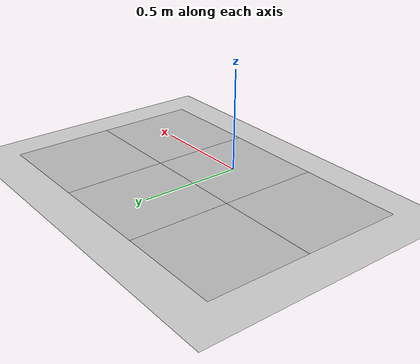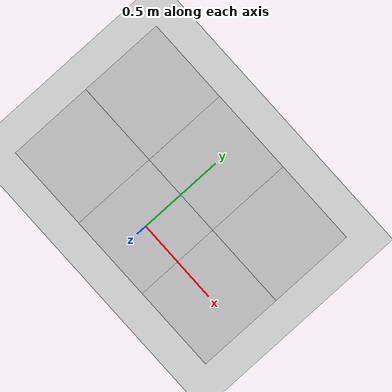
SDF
<?xml version="1.0" ?>
<sdf version="1.6">
  <world name="default">
    <physics name="10ms" type="ignored">
      <max_step_size>0.010</max_step_size>
      <real_time_factor>1.0</real_time_factor>
    </physics>
    <plugin
      filename="gz-sim-physics-system"
      name="gz::sim::systems::Physics">
    </plugin>
    <plugin
      filename="gz-sim-user-commands-system"
      name="gz::sim::systems::UserCommands">
    </plugin>
    <plugin
      filename="gz-sim-scene-broadcaster-system"
      name="gz::sim::systems::SceneBroadcaster">
    </plugin>

    <include>
      <uri>
        https://fuel.gazebosim.org/1.0/OpenRobotics/models/Sun
      </uri>
    </include>

    <include>
      <uri>
        https://fuel.gazebosim.org/1.0/OpenRobotics/models/Ground%20Plane
      </uri>
    </include>

    <model name="straight_1">
      <include>
        <uri>model://course_straight_50x50cm</uri>
      </include>
      <pose>0 0 0.01 0 0 0</pose>
    </model>

    <model name="curve_1">
      <include>
        <uri>model://course_curve_50x50cm</uri>
      </include>
      <pose>0.5 0 0.01 0 0 0</pose>
    </model>

    <model name="curve_2">
      <include>
        <uri>model://course_curve_50x50cm</uri>
      </include>
      <pose>0.5 0.5 0.01 0 0 1.57</pose>
    </model>

    <model name="straight_2">
      <include>
        <uri>model://course_straight_50x50cm</uri>
      </include>
      <pose>0 0.5 0.01 0 0 0</pose>
    </model>

    <model name="curve_3">
      <include>
        <uri>model://course_curve_50x50cm</uri>
      </include>
      <pose>-0.5 0 0.01 0 0 -1.57</pose>
    </model>

    <model name="curve_4">
      <include>
        <uri>model://course_curve_50x50cm</uri>
      </include>
      <pose>-0.5 0.5 0.01 0 0 3.14</pose>
    </model>

  </world>
</sdf>

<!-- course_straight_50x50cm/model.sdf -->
<sdf version="1.5">
  <model name="course_straight_50x50cm">
    <static>true</static>
    <link name="link">
      <collision name="collision">
        <pose>0 0 0 0 0 0</pose>
        <geometry>
          <mesh>
            <uri>model://course_straight_50x50cm/meshes/course_straight_50x50cm.dae</uri>
            <scale>1 1 1</scale>
          </mesh>
        </geometry>
        <surface>
          <friction>
            <ode>
              <mu>0.9</mu>
              <mu2>0.9</mu2>
            </ode>
          </friction>
        </surface>
      </collision>
      <visual name="visual">
        <pose>0 0 0 0 0 0</pose>
        <geometry>
          <mesh>
            <uri>model://course_straight_50x50cm/meshes/course_straight_50x50cm.dae</uri>
            <scale>1 1 1</scale>
          </mesh>
        </geometry>
      </visual>
    </link>
  </model>
</sdf>

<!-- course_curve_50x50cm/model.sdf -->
<sdf version="1.5">
  <model name="course_curve_50x50cm">
    <static>true</static>
    <link name="link">
      <collision name="collision">
        <pose>0 0 0 0 0 0</pose>
        <geometry>
          <mesh>
            <uri>model://course_curve_50x50cm/meshes/course_curve_50x50cm.dae</uri>
            <scale>1 1 1</scale>
          </mesh>
        </geometry>
        <surface>
          <friction>
            <ode>
              <mu>0.9</mu>
              <mu2>0.9</mu2>
            </ode>
          </friction>
        </surface>
      </collision>
      <visual name="visual">
        <pose>0 0 0 0 0 0</pose>
        <geometry>
          <mesh>
            <uri>model://course_curve_50x50cm/meshes/course_curve_50x50cm.dae</uri>
            <scale>1 1 1</scale>
          </mesh>
        </geometry>
      </visual>
    </link>
  </model>
</sdf>
